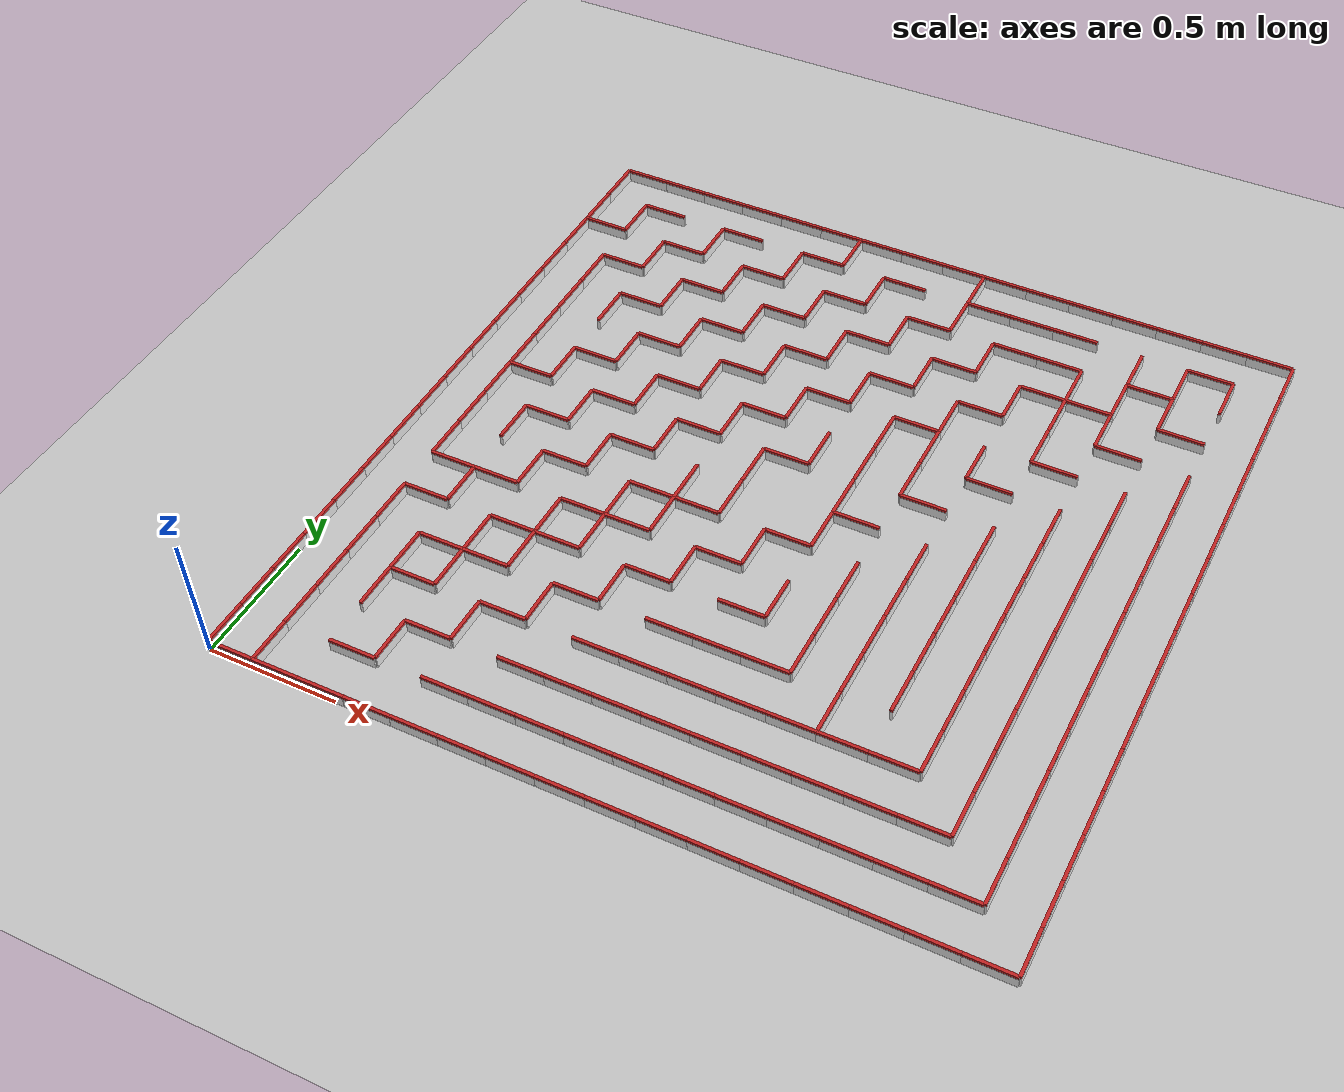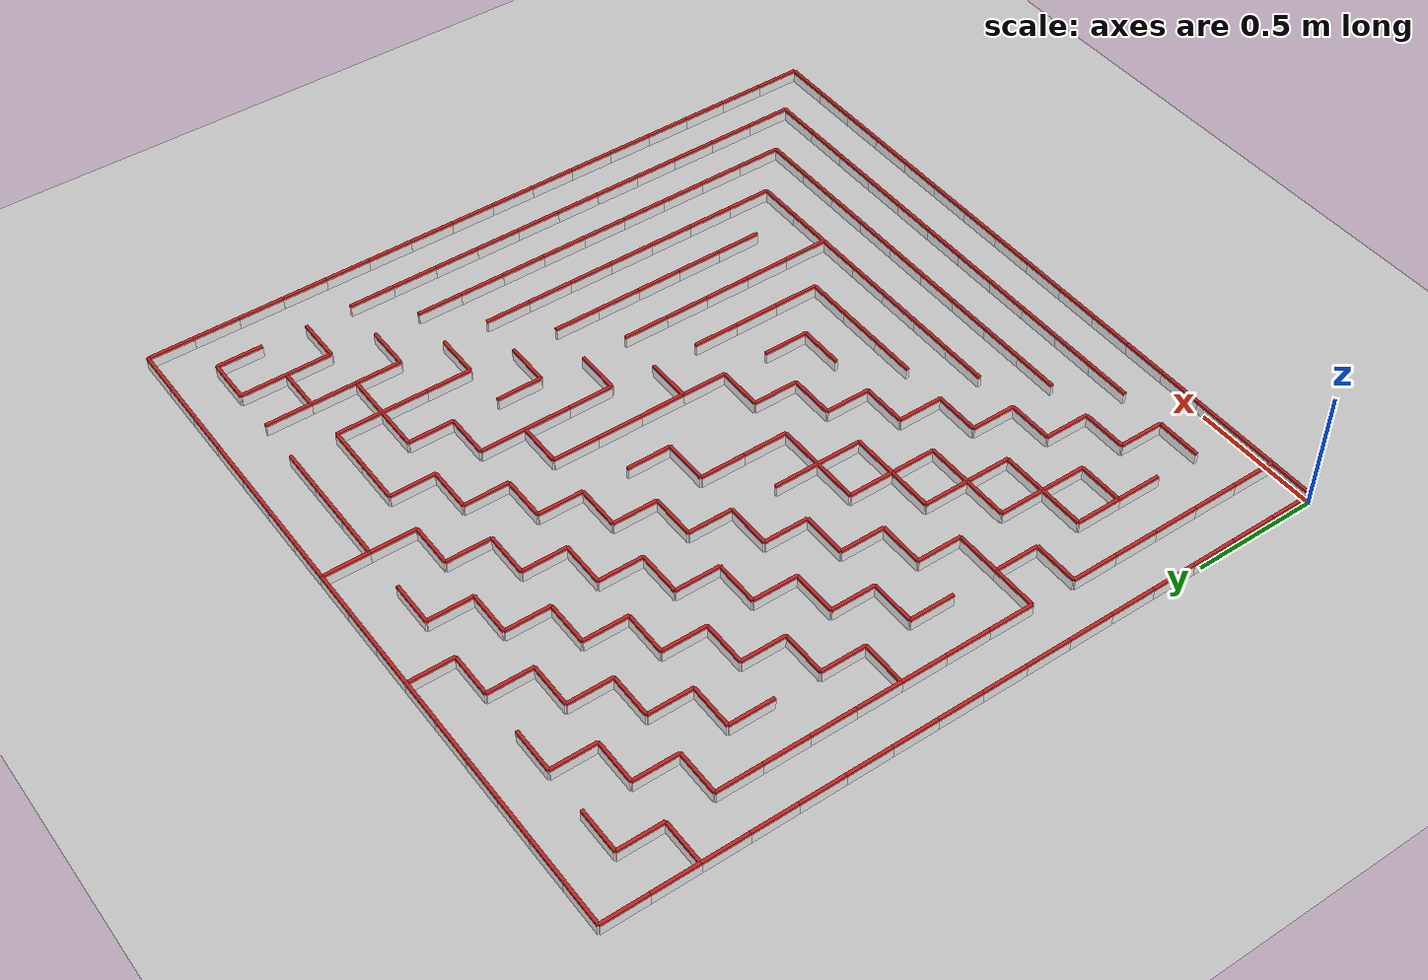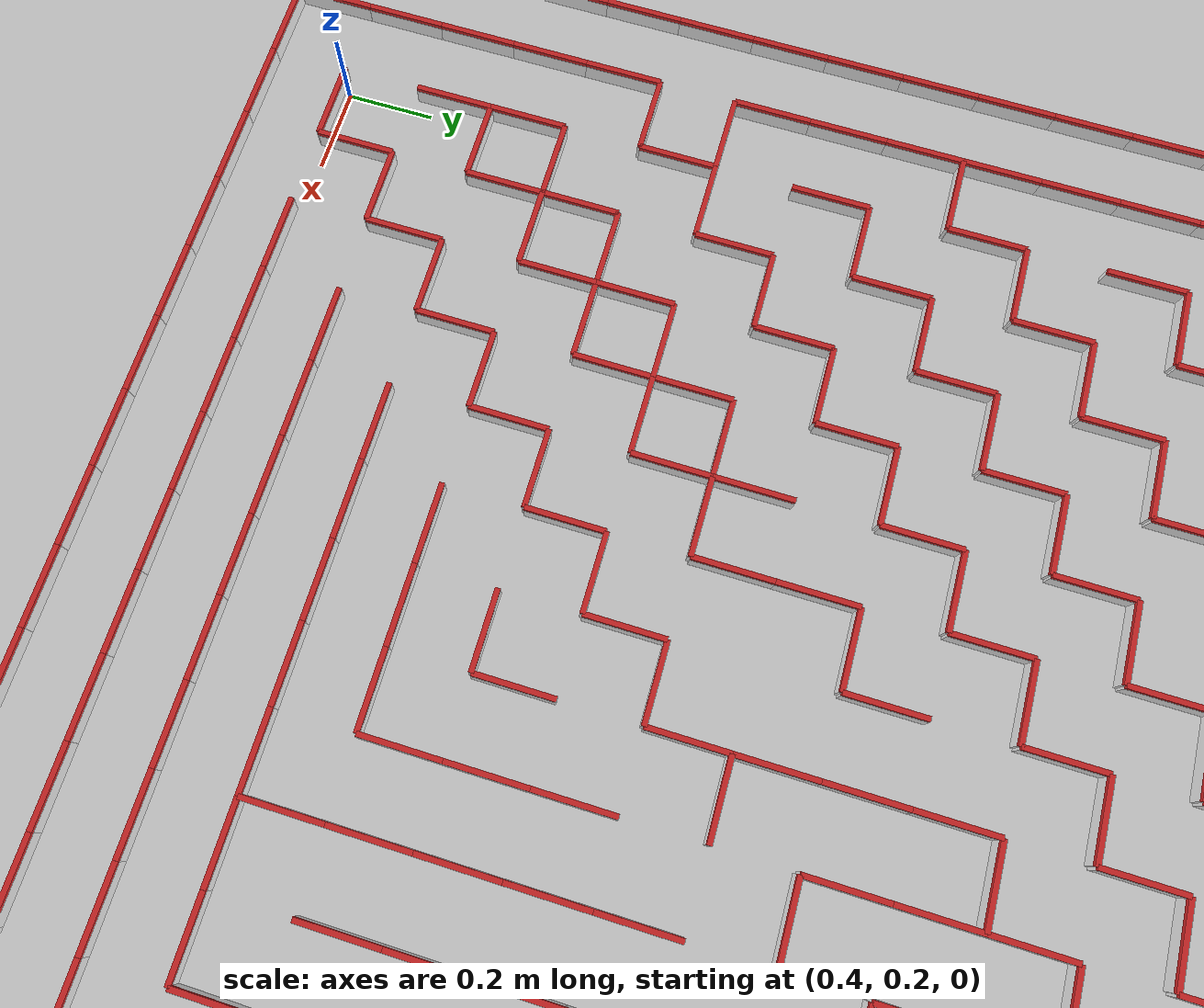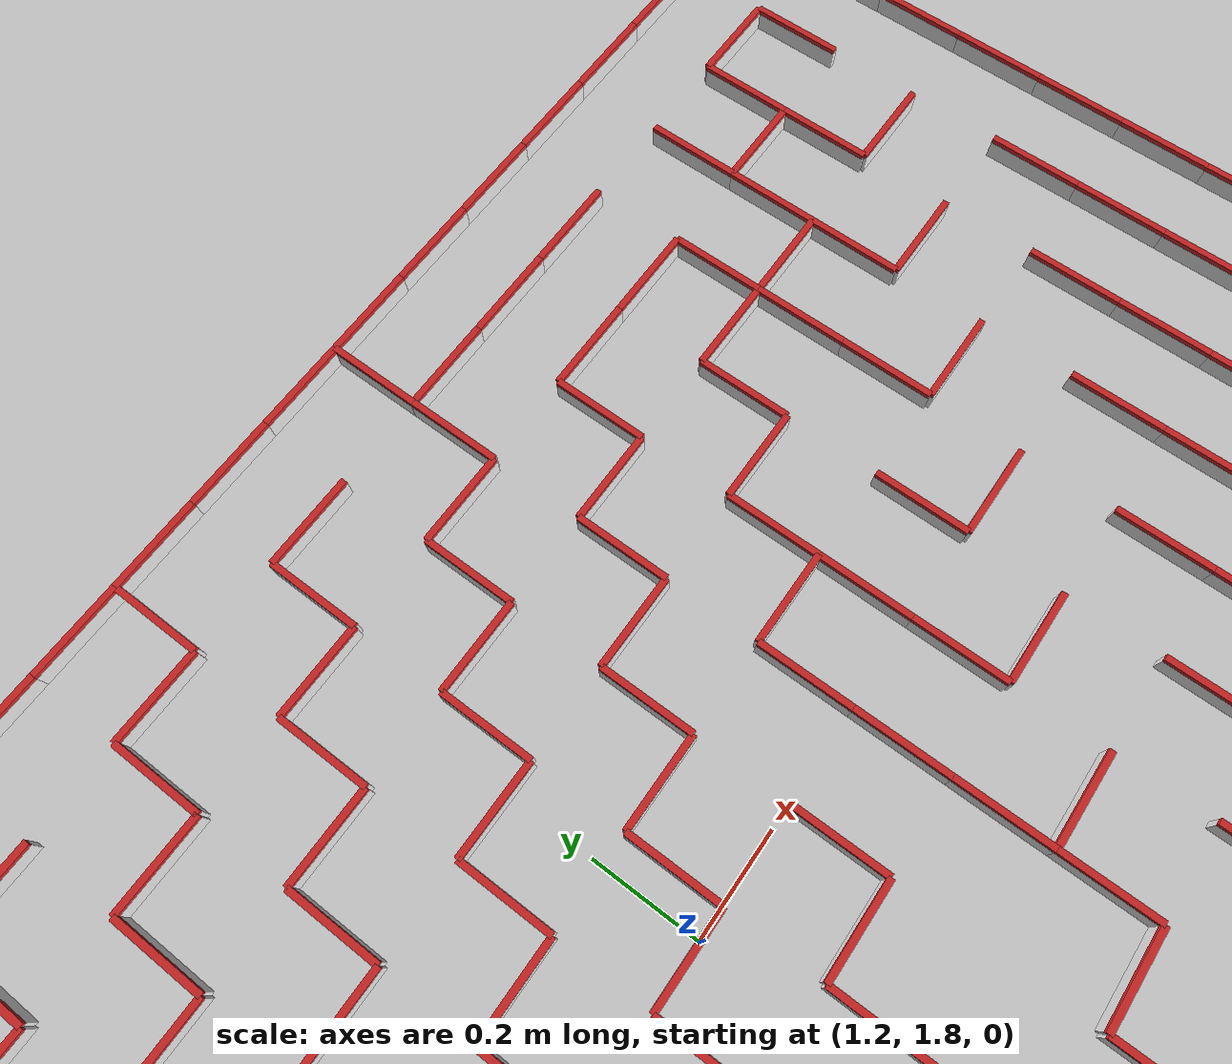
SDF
<sdf version="1.6">
  <world name="default">

    <gui>
	<camera name="user_camera">
        <track_visual>
          <name>vayu</name>
          <static>true</static>
          <use_model_frame>true</use_model_frame>
          <xyz>0 -0.25 0.75</xyz>
          <inherit_yaw>false</inherit_yaw>
        </track_visual>
	</camera>
    </gui>

    <scene>
      <ambient>0.4 0.4 0.4 1</ambient>
      <background>1 1 1 1</background>
      <shadows>false</shadows>
	<grid>1</grid>
    </scene>

    <!-- A global light source -->
    <include>
      <uri>model://sun</uri>
    </include>

    <!-- A ground plane -->
    <include>
      <uri>model://ground_plane</uri>
    </include>

    <!-- My maze -->
    <include>
      <uri>model://maze</uri>
	<pose> 0 0 0 0 0 0</pose>
    </include>

    <physics type="ode">
      <real_time_update_rate>400.0</real_time_update_rate>
      <max_step_size>0.0025</max_step_size>
      <real_time_factor>1</real_time_factor>
      <ode>
        <solver>
          <type>quick</type>
          <iters>250</iters>
          <precon_iters>0</precon_iters>
          <sor>1.400000</sor>
          <use_dynamic_moi_rescaling>1</use_dynamic_moi_rescaling>
        </solver>
        <constraints>
          <cfm>0.00001</cfm>
          <erp>0.2</erp>
          <contact_max_correcting_vel>2000.000000</contact_max_correcting_vel>
          <contact_surface_layer>0.01000</contact_surface_layer>
        </constraints>
      </ode>
    </physics>
  </world>

</sdf>
